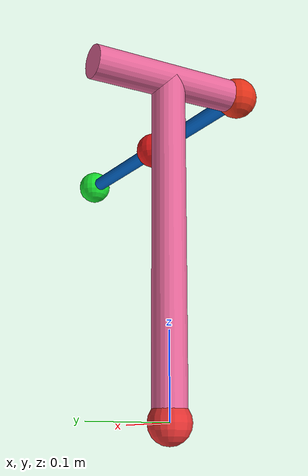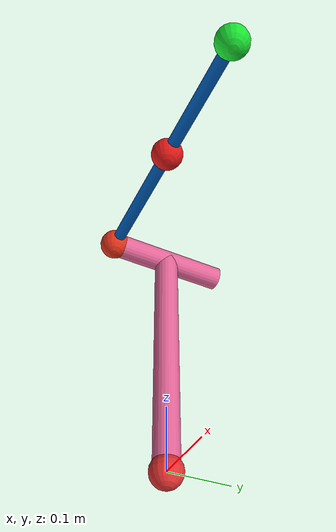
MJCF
<mujoco model="ReacherHumanoid">
	<compiler angle="radian" inertiafromgeom="true"/>
	<default>
		<joint armature="1" damping="1" limited="false"/>
		<geom contype="0" friction="1 0.1 0.1" rgba="0.7 0.7 0 1"/>
	</default>

	<option integrator="RK4" iterations="50" solver="PGS" timestep="0.003">
	</option>
	<worldbody>
		<!-- Base -->
		<geom conaffinity="0" contype="0" fromto="0 0 0 0 0 0.4" name="base" rgba="0.9 0.4 0.6 1" size=".02" type="cylinder"/>
        <geom fromto="0 -0.1 0.4 0 0.1 0.4" name="robot" rgba="0.9 0.4 0.6 1" size=".02" type="cylinder"/>
		<body name="robot" pos="0 -0.1 0">
            <!-- Arm -->
            <body name="robot_arm" pos="0 0 0.4">
                <geom name="robot_shoulder" pos="0 0 0" rgba="0.9 0.2 0.1 0.9" size=".025" type="sphere"/>
                <joint axis="0 0 1" limited="true" name="robot_shoulder_joint_z" pos="0 0 0" type="hinge"/>
                <joint axis="0 1 0" limited="true" name="robot_shoulder_joint_y" pos="0 0 0" type="hinge"/>
                <geom fromto="0 0 0 0.2 0 0" name="robot_arm0" rgba="0.0 0.4 0.8 0.9" size=".01" type="capsule"/>

                <!-- Lower Arm -->
                <body name="robot_lower_arm" pos="0.21 0 0">
                    <body name="robot_elbow" pos="0 0 0">
                        <geom contype="0" conaffinity="0" pos="0 0 0" name="robot_arm" rgba="0.9 0.1 0.1 0.9" size=".025" type="sphere"/>
                    </body>
                    <joint axis="0 1 0" limited="false" name="robot_elbow_joint" pos="0 0 0" type="hinge"/>
                    <geom contype="0" conaffinity="0" fromto="0 0 0 0.2 0 0" name="robot_lower_arm" rgba="0.0 0.4 0.8 0.9" size=".01" type="capsule"/>
                    <!-- Hand -->
                    <body name="robot_hand" pos="0.2 0 0">
                        <geom conaffinity="0" contype="0" pos="0 0 0" name="robot_hand" rgba="0.1 0.9 0.2 0.9" size=".025" type="sphere"/>
                    </body>
                </body>
            </body>

        </body>
		<!-- Target0 -->
		<body name="target0" pos="0 0 0">
			<joint armature="0" axis="1 0 0" damping="0"  name="target_x0" pos="0 0 0" type="slide"/>
			<joint armature="0" axis="0 1 0" damping="0"  name="target_y0" pos="0 0 0" type="slide"/>
			<joint armature="0" axis="0 0 1" damping="0"  name="target_z0" pos="0 0 0" type="slide"/>
			<geom conaffinity="0" contype="0" name="target0" pos="0 0 0" rgba="0.9 0.2 0.2 1" size=".025" type="sphere" mass="0"/>
		</body>

		<!-- Target1 -->
		<body name="target1" pos="0 0 0">
			<joint armature="0" axis="1 0 0" damping="0" name="target_x1" pos="0 0 0" type="slide"/>
			<joint armature="0" axis="0 1 0" damping="0" name="target_y1" pos="0 0 0" type="slide"/>
			<joint armature="0" axis="0 0 1" damping="0" name="target_z1" pos="0 0 0" type="slide"/>
			<geom conaffinity="0" contype="0" name="target1" pos="0 0 0" rgba="0.2 0.9 0.2 1" size=".025" type="sphere" mass="0"/>
		</body>
	</worldbody>
	<actuator>
		<motor gear="100.0" joint="robot_shoulder_joint_z"/>
		<motor gear="100.0" joint="robot_shoulder_joint_y"/>
		<motor gear="100.0" joint="robot_elbow_joint"/>
	</actuator>
</mujoco>
